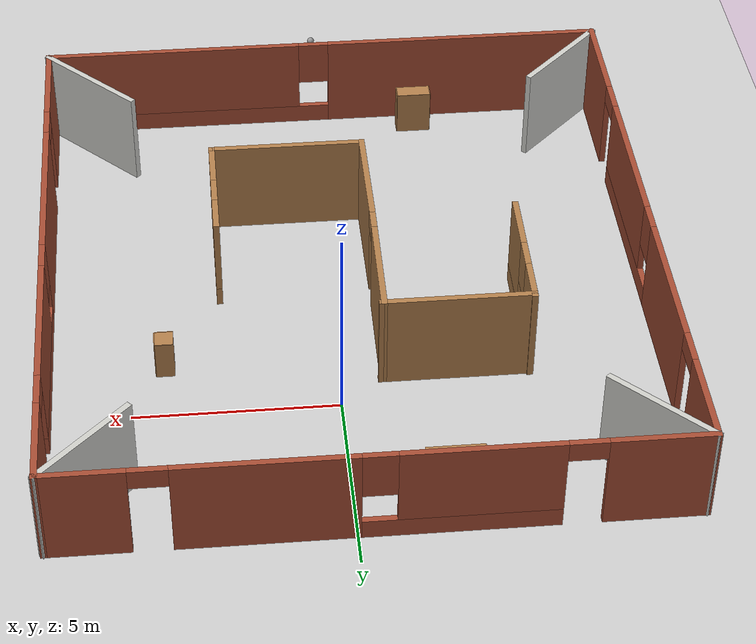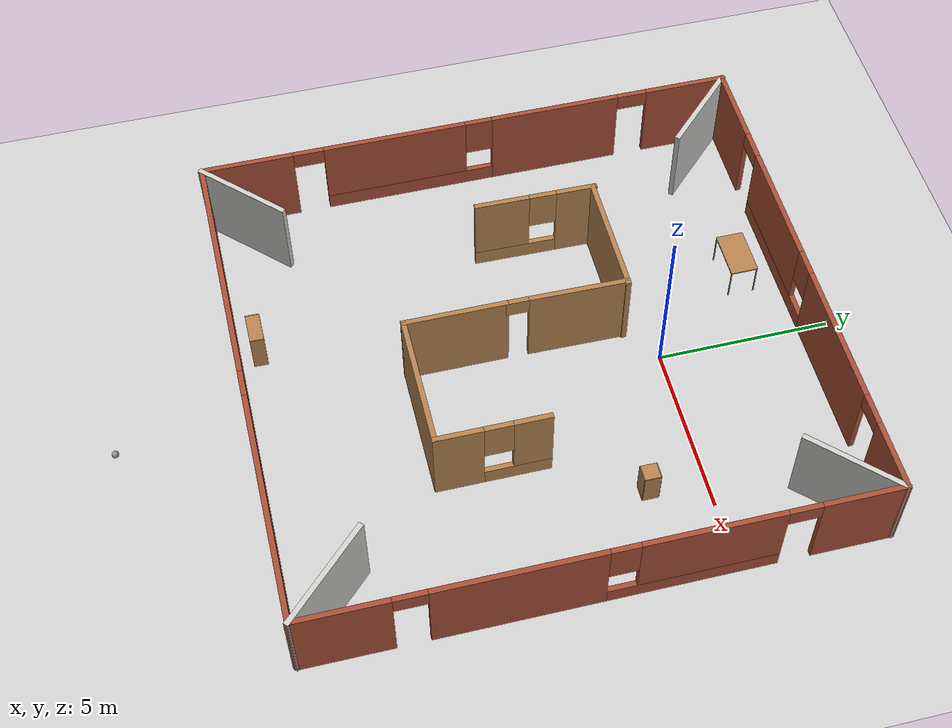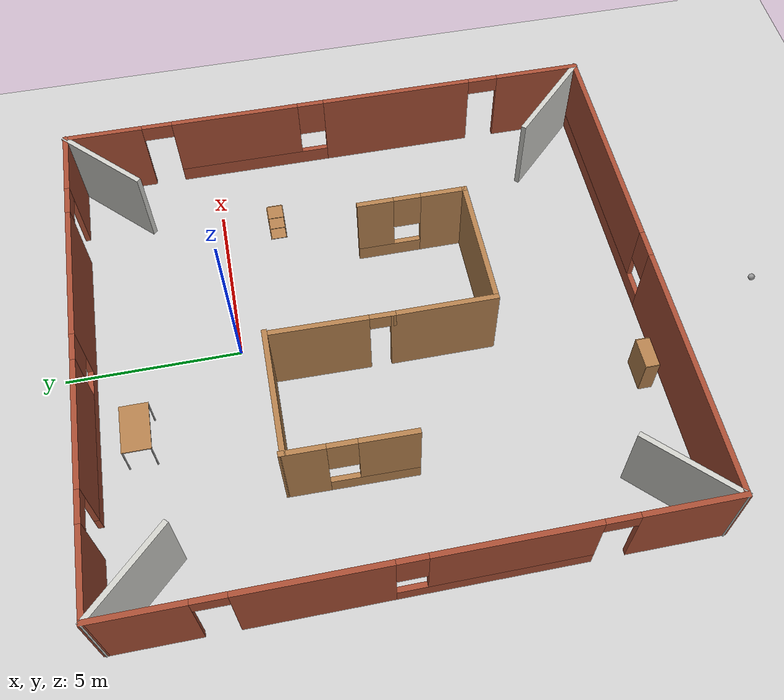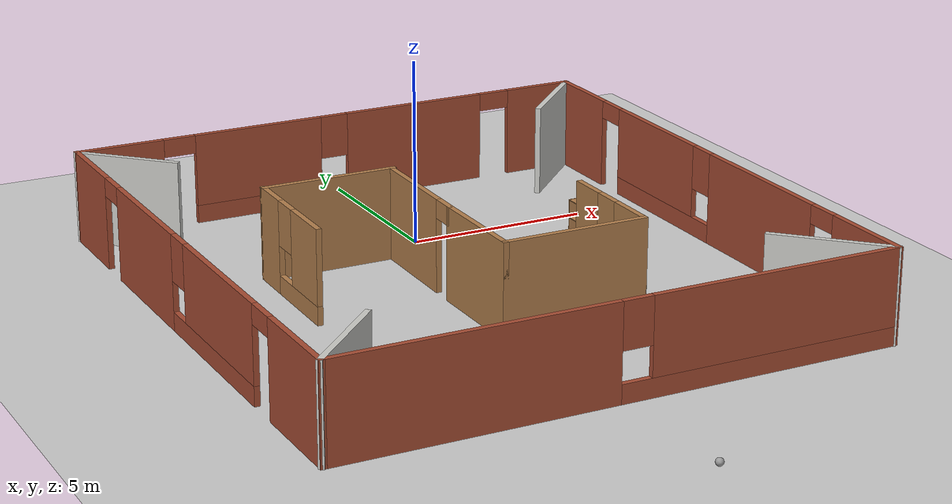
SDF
<sdf version="1.6">
 <world name="default">
  <light name="sun" type="directional">
   <pose>0 0 10 0 -0 0</pose>
   <diffuse>0.8 0.8 0.8 1</diffuse>
   <specular>0.1 0.1 0.1 1</specular>
   <attenuation>
    <range>1000</range>
    <constant>0.9</constant>
    <linear>0.01</linear>
    <quadratic>0.001</quadratic>
   </attenuation>
   <direction>-0.5 0.5 -1</direction>
  </light>
  <model name="ground_plane">
   <static>1</static>
   <link name="link">
    <collision name="collision">
     <geometry><plane><normal>0 0 1</normal><size>100 100</size></plane></geometry>
     <surface><friction><ode><mu>100</mu><mu2>50</mu2></ode></friction></surface>
    </collision>
    <visual name="visual">
     <cast_shadows>0</cast_shadows>
     <geometry><plane><normal>0 0 1</normal><size>100 100</size></plane></geometry>
     <material>
      <script><uri>file://media/materials/scripts/gazebo.material</uri><name>Gazebo/Grey</name></script>
     </material>
    </visual>
   </link>
  </model>
  <gravity>0 0 -9.8</gravity>
  <magnetic_field>6e-06 2.3e-05 -4.2e-05</magnetic_field>
  <atmosphere type="adiabatic"/>
  <physics name="default_physics" default="0" type="ode">
   <max_step_size>0.001</max_step_size>
   <real_time_factor>1</real_time_factor>
   <real_time_update_rate>1000</real_time_update_rate>
  </physics>
  <scene><ambient>0.4 0.4 0.4 1</ambient><background>0.7 0.7 0.7 1</background><shadows>1</shadows></scene>
  <spherical_coordinates>
   <surface_model>EARTH_WGS84</surface_model>
   <latitude_deg>0</latitude_deg>
   <longitude_deg>0</longitude_deg>
   <elevation>0</elevation>
   <heading_deg>0</heading_deg>
  </spherical_coordinates>
  <model name="NewHouse">
   <pose>-0.465 -3.732 0 0 -0 0</pose>
   <link name="Wall_1">
    <pose>7.425 0 0 0 -0 1.5708</pose>
    <visual name="Wall_1_Visual_0">
     <pose>-6.69289 0 1.25 0 -0 0</pose>
     <geometry><box><size>2.61422 0.15 2.5</size></box></geometry>
     <material>
      <script><uri>file://media/materials/scripts/gazebo.material</uri><name>Gazebo/Bricks</name></script>
      <ambient>1 1 1 1</ambient>
     </material>
    </visual>
    <collision name="Wall_1_Collision_0">
     <geometry><box><size>2.61422 0.15 2.5</size></box></geometry>
     <pose>-6.69289 0 1.25 0 -0 0</pose>
    </collision>
    <visual name="Wall_1_Visual_1">
     <pose>-2.18914 0 1.25 0 -0 0</pose>
     <geometry><box><size>4.5933 0.15 2.5</size></box></geometry>
     <material>
      <script><uri>file://media/materials/scripts/gazebo.material</uri><name>Gazebo/Bricks</name></script>
      <ambient>1 1 1 1</ambient>
     </material>
    </visual>
    <collision name="Wall_1_Collision_1">
     <geometry><box><size>4.5933 0.15 2.5</size></box></geometry>
     <pose>-2.18914 0 1.25 0 -0 0</pose>
    </collision>
    <visual name="Wall_1_Visual_2">
     <pose>6.82821 0 1.25 0 -0 0</pose>
     <geometry><box><size>2.34357 0.15 2.5</size></box></geometry>
     <material>
      <script><uri>file://media/materials/scripts/gazebo.material</uri><name>Gazebo/Bricks</name></script>
      <ambient>1 1 1 1</ambient>
     </material>
    </visual>
    <collision name="Wall_1_Collision_2">
     <geometry><box><size>2.34357 0.15 2.5</size></box></geometry>
     <pose>6.82821 0 1.25 0 -0 0</pose>
    </collision>
    <visual name="Wall_1_Visual_3">
     <pose>2.43197 0 0.25 0 -0 0</pose>
     <geometry><box><size>4.64891 0.15 0.5</size></box></geometry>
     <material>
      <script><uri>file://media/materials/scripts/gazebo.material</uri><name>Gazebo/Bricks</name></script>
      <ambient>1 1 1 1</ambient>
     </material>
    </visual>
    <collision name="Wall_1_Collision_3">
     <geometry><box><size>4.64891 0.15 0.5</size></box></geometry>
     <pose>2.43197 0 0.25 0 -0 0</pose>
    </collision>
    <visual name="Wall_1_Visual_4">
     <pose>2.83197 0 1.5 0 -0 0</pose>
     <geometry><box><size>3.84891 0.15 2</size></box></geometry>
     <material>
      <script><uri>file://media/materials/scripts/gazebo.material</uri><name>Gazebo/Bricks</name></script>
      <ambient>1 1 1 1</ambient>
     </material>
    </visual>
    <collision name="Wall_1_Collision_4">
     <geometry><box><size>3.84891 0.15 2</size></box></geometry>
     <pose>2.83197 0 1.5 0 -0 0</pose>
    </collision>
    <visual name="Wall_1_Visual_5">
     <pose>0.507513 0 1.9 0 -0 0</pose>
     <geometry><box><size>0.8 0.15 1.2</size></box></geometry>
     <material>
      <script><uri>file://media/materials/scripts/gazebo.material</uri><name>Gazebo/Bricks</name></script>
      <ambient>1 1 1 1</ambient>
     </material>
    </visual>
    <collision name="Wall_1_Collision_5">
     <geometry><box><size>0.8 0.15 1.2</size></box></geometry>
     <pose>0.507513 0 1.9 0 -0 0</pose>
    </collision>
    <visual name="Wall_1_Visual_6">
     <pose>-4.93579 0 2.25 0 -0 0</pose>
     <geometry><box><size>0.9 0.15 0.5</size></box></geometry>
     <material>
      <script><uri>file://media/materials/scripts/gazebo.material</uri><name>Gazebo/Bricks</name></script>
      <ambient>1 1 1 1</ambient>
     </material>
    </visual>
    <collision name="Wall_1_Collision_6">
     <geometry><box><size>0.9 0.15 0.5</size></box></geometry>
     <pose>-4.93579 0 2.25 0 -0 0</pose>
    </collision>
    <visual name="Wall_1_Visual_7">
     <pose>5.20643 0 2.25 0 -0 0</pose>
     <geometry><box><size>0.9 0.15 0.5</size></box></geometry>
     <material>
      <script><uri>file://media/materials/scripts/gazebo.material</uri><name>Gazebo/Bricks</name></script>
      <ambient>1 1 1 1</ambient>
     </material>
    </visual>
    <collision name="Wall_1_Collision_7">
     <geometry><box><size>0.9 0.15 0.5</size></box></geometry>
     <pose>5.20643 0 2.25 0 -0 0</pose>
    </collision>
   </link>
   <link name="Wall_10">
    <collision name="Wall_10_Collision">
     <geometry><box><size>3 0.15 2.5</size></box></geometry>
     <pose>0 0 1.25 0 -0 0</pose>
    </collision>
    <visual name="Wall_10_Visual">
     <pose>0 0 1.25 0 -0 0</pose>
     <geometry><box><size>3 0.15 2.5</size></box></geometry>
     <material>
      <script><uri>file://media/materials/scripts/gazebo.material</uri><name>Gazebo/CeilingTiled</name></script>
      <ambient>1 1 1 1</ambient>
     </material>
    </visual>
    <pose>-6.41737 -6.91737 0 0 -0 0.785398</pose>
   </link>
   <link name="Wall_12">
    <collision name="Wall_12_Collision">
     <geometry><box><size>3 0.15 2.5</size></box></geometry>
     <pose>0 0 1.25 0 -0 0</pose>
    </collision>
    <visual name="Wall_12_Visual">
     <pose>0 0 1.25 0 -0 0</pose>
     <geometry><box><size>3 0.15 2.5</size></box></geometry>
     <material>
      <script><uri>file://media/materials/scripts/gazebo.material</uri><name>Gazebo/CeilingTiled</name></script>
      <ambient>1 1 1 1</ambient>
     </material>
    </visual>
    <pose>6.41737 6.91737 0 0 0 -2.35619</pose>
   </link>
   <link name="Wall_14">
    <collision name="Wall_14_Collision">
     <geometry><box><size>3.25 0.15 2.5</size></box></geometry>
     <pose>0 0 1.25 0 -0 0</pose>
    </collision>
    <visual name="Wall_14_Visual">
     <pose>0 0 1.25 0 -0 0</pose>
     <geometry><box><size>3.25 0.15 2.5</size></box></geometry>
     <material>
      <script><uri>file://media/materials/scripts/gazebo.material</uri><name>Gazebo/CeilingTiled</name></script>
      <ambient>1 1 1 1</ambient>
     </material>
    </visual>
    <pose>6.32898 -6.82898 0 0 -0 2.35619</pose>
   </link>
   <link name="Wall_16">
    <collision name="Wall_16_Collision">
     <geometry><box><size>3 0.15 2.5</size></box></geometry>
     <pose>0 0 1.25 0 -0 0</pose>
    </collision>
    <visual name="Wall_16_Visual">
     <pose>0 0 1.25 0 -0 0</pose>
     <geometry><box><size>3 0.15 2.5</size></box></geometry>
     <material>
      <script><uri>file://media/materials/scripts/gazebo.material</uri><name>Gazebo/CeilingTiled</name></script>
      <ambient>1 1 1 1</ambient>
     </material>
    </visual>
    <pose>-6.41737 6.91737 0 0 0 -0.785398</pose>
   </link>
   <link name="Wall_2">
    <pose>0 7.925 0 0 -0 3.14159</pose>
    <visual name="Wall_2_Visual_0">
     <pose>-6.478 0 1.25 0 -0 0</pose>
     <geometry><box><size>2.04399 0.15 2.5</size></box></geometry>
     <material>
      <script><uri>file://media/materials/scripts/gazebo.material</uri><name>Gazebo/Bricks</name></script>
      <ambient>1 1 1 1</ambient>
     </material>
    </visual>
    <collision name="Wall_2_Collision_0">
     <geometry><box><size>2.04399 0.15 2.5</size></box></geometry>
     <pose>-6.478 0 1.25 0 -0 0</pose>
    </collision>
    <visual name="Wall_2_Visual_1">
     <pose>-2.46871 0 1.25 0 -0 0</pose>
     <geometry><box><size>4.17458 0.15 2.5</size></box></geometry>
     <material>
      <script><uri>file://media/materials/scripts/gazebo.material</uri><name>Gazebo/Bricks</name></script>
      <ambient>1 1 1 1</ambient>
     </material>
    </visual>
    <collision name="Wall_2_Collision_1">
     <geometry><box><size>4.17458 0.15 2.5</size></box></geometry>
     <pose>-2.46871 0 1.25 0 -0 0</pose>
    </collision>
    <visual name="Wall_2_Visual_2">
     <pose>6.26396 0 1.25 0 -0 0</pose>
     <geometry><box><size>2.47208 0.15 2.5</size></box></geometry>
     <material>
      <script><uri>file://media/materials/scripts/gazebo.material</uri><name>Gazebo/Bricks</name></script>
      <ambient>1 1 1 1</ambient>
     </material>
    </visual>
    <collision name="Wall_2_Collision_2">
     <geometry><box><size>2.47208 0.15 2.5</size></box></geometry>
     <pose>6.26396 0 1.25 0 -0 0</pose>
    </collision>
    <visual name="Wall_2_Visual_3">
     <pose>1.87325 0 0.25 0 -0 0</pose>
     <geometry><box><size>4.50934 0.15 0.5</size></box></geometry>
     <material>
      <script><uri>file://media/materials/scripts/gazebo.material</uri><name>Gazebo/Bricks</name></script>
      <ambient>1 1 1 1</ambient>
     </material>
    </visual>
    <collision name="Wall_2_Collision_3">
     <geometry><box><size>4.50934 0.15 0.5</size></box></geometry>
     <pose>1.87325 0 0.25 0 -0 0</pose>
    </collision>
    <visual name="Wall_2_Visual_4">
     <pose>2.27325 0 1.5 0 -0 0</pose>
     <geometry><box><size>3.70934 0.15 2</size></box></geometry>
     <material>
      <script><uri>file://media/materials/scripts/gazebo.material</uri><name>Gazebo/Bricks</name></script>
      <ambient>1 1 1 1</ambient>
     </material>
    </visual>
    <collision name="Wall_2_Collision_4">
     <geometry><box><size>3.70934 0.15 2</size></box></geometry>
     <pose>2.27325 0 1.5 0 -0 0</pose>
    </collision>
    <visual name="Wall_2_Visual_5">
     <pose>0.018576 0 1.9 0 -0 0</pose>
     <geometry><box><size>0.8 0.15 1.2</size></box></geometry>
     <material>
      <script><uri>file://media/materials/scripts/gazebo.material</uri><name>Gazebo/Bricks</name></script>
      <ambient>1 1 1 1</ambient>
     </material>
    </visual>
    <collision name="Wall_2_Collision_5">
     <geometry><box><size>0.8 0.15 1.2</size></box></geometry>
     <pose>0.018576 0 1.9 0 -0 0</pose>
    </collision>
    <visual name="Wall_2_Visual_6">
     <pose>-5.00601 0 2.25 0 -0 0</pose>
     <geometry><box><size>0.9 0.15 0.5</size></box></geometry>
     <material>
      <script><uri>file://media/materials/scripts/gazebo.material</uri><name>Gazebo/Bricks</name></script>
      <ambient>1 1 1 1</ambient>
     </material>
    </visual>
    <collision name="Wall_2_Collision_6">
     <geometry><box><size>0.9 0.15 0.5</size></box></geometry>
     <pose>-5.00601 0 2.25 0 -0 0</pose>
    </collision>
    <visual name="Wall_2_Visual_7">
     <pose>4.57792 0 2.25 0 -0 0</pose>
     <geometry><box><size>0.9 0.15 0.5</size></box></geometry>
     <material>
      <script><uri>file://media/materials/scripts/gazebo.material</uri><name>Gazebo/Bricks</name></script>
      <ambient>1 1 1 1</ambient>
     </material>
    </visual>
    <collision name="Wall_2_Collision_7">
     <geometry><box><size>0.9 0.15 0.5</size></box></geometry>
     <pose>4.57792 0 2.25 0 -0 0</pose>
    </collision>
   </link>
   <link name="Wall_21">
    <collision name="Wall_21_Collision">
     <geometry><box><size>3.75456 0.15 2.5</size></box></geometry>
     <pose>0 0 1.25 0 -0 0</pose>
    </collision>
    <visual name="Wall_21_Visual">
     <pose>0 0 1.25 0 -0 0</pose>
     <geometry><box><size>3.75456 0.15 2.5</size></box></geometry>
     <material>
      <script><uri>file://media/materials/scripts/gazebo.material</uri><name>Gazebo/Wood</name></script>
      <ambient>1 1 1 1</ambient>
     </material>
    </visual>
    <pose>-2.35692 2.92676 0 0 -0 0</pose>
   </link>
   <link name="Wall_22">
    <pose>-0.62443 1.19654 0 0 0 -1.58424</pose>
    <visual name="Wall_22_Visual_0">
     <pose>-0.363906 0 1.25 0 -0 0</pose>
     <geometry><box><size>2.88293 0.15 2.5</size></box></geometry>
     <material>
      <script><uri>file://media/materials/scripts/gazebo.material</uri><name>Gazebo/Wood</name></script>
      <ambient>1 1 1 1</ambient>
     </material>
    </visual>
    <collision name="Wall_22_Collision_0">
     <geometry><box><size>2.88293 0.15 2.5</size></box></geometry>
     <pose>-0.363906 0 1.25 0 -0 0</pose>
    </collision>
    <visual name="Wall_22_Visual_1">
     <pose>1.44146 0 2.25 0 -0 0</pose>
     <geometry><box><size>0.727811 0.15 0.5</size></box></geometry>
     <material>
      <script><uri>file://media/materials/scripts/gazebo.material</uri><name>Gazebo/Wood</name></script>
      <ambient>1 1 1 1</ambient>
     </material>
    </visual>
    <collision name="Wall_22_Collision_1">
     <geometry><box><size>0.727811 0.15 0.5</size></box></geometry>
     <pose>1.44146 0 2.25 0 -0 0</pose>
    </collision>
   </link>
   <link name="Wall_24">
    <pose>-4.18247 1.24307 0 0 0 -1.58424</pose>
    <visual name="Wall_24_Visual_0">
     <pose>-1.20155 0 1.25 0 -0 0</pose>
     <geometry><box><size>1.20765 0.15 2.5</size></box></geometry>
     <material>
      <script><uri>file://media/materials/scripts/gazebo.material</uri><name>Gazebo/Wood</name></script>
      <ambient>1 1 1 1</ambient>
     </material>
    </visual>
    <collision name="Wall_24_Collision_0">
     <geometry><box><size>1.20765 0.15 2.5</size></box></geometry>
     <pose>-1.20155 0 1.25 0 -0 0</pose>
    </collision>
    <visual name="Wall_24_Visual_1">
     <pose>0.603824 0 0.25 0 -0 0</pose>
     <geometry><box><size>2.40309 0.15 0.5</size></box></geometry>
     <material>
      <script><uri>file://media/materials/scripts/gazebo.material</uri><name>Gazebo/Wood</name></script>
      <ambient>1 1 1 1</ambient>
     </material>
    </visual>
    <collision name="Wall_24_Collision_1">
     <geometry><box><size>2.40309 0.15 0.5</size></box></geometry>
     <pose>0.603824 0 0.25 0 -0 0</pose>
    </collision>
    <visual name="Wall_24_Visual_2">
     <pose>1.00382 0 1.5 0 -0 0</pose>
     <geometry><box><size>1.60309 0.15 2</size></box></geometry>
     <material>
      <script><uri>file://media/materials/scripts/gazebo.material</uri><name>Gazebo/Wood</name></script>
      <ambient>1 1 1 1</ambient>
     </material>
    </visual>
    <collision name="Wall_24_Collision_2">
     <geometry><box><size>1.60309 0.15 2</size></box></geometry>
     <pose>1.00382 0 1.5 0 -0 0</pose>
    </collision>
    <visual name="Wall_24_Visual_3">
     <pose>-0.197722 0 1.9 0 -0 0</pose>
     <geometry><box><size>0.8 0.15 1.2</size></box></geometry>
     <material>
      <script><uri>file://media/materials/scripts/gazebo.material</uri><name>Gazebo/Wood</name></script>
      <ambient>1 1 1 1</ambient>
     </material>
    </visual>
    <collision name="Wall_24_Collision_3">
     <geometry><box><size>0.8 0.15 1.2</size></box></geometry>
     <pose>-0.197722 0 1.9 0 -0 0</pose>
    </collision>
   </link>
   <link name="Wall_26">
    <collision name="Wall_26_Collision">
     <geometry><box><size>3 0.15 2.5</size></box></geometry>
     <pose>0 0 1.25 0 -0 0</pose>
    </collision>
    <visual name="Wall_26_Visual">
     <pose>0 0 1.25 0 -0 0</pose>
     <geometry><box><size>3 0.15 2.5</size></box></geometry>
     <material>
      <script><uri>file://media/materials/scripts/gazebo.material</uri><name>Gazebo/Wood</name></script>
      <ambient>1 1 1 1</ambient>
     </material>
    </visual>
    <pose>-0.647692 -1.95867 0 0 0 -1.5708</pose>
   </link>
   <link name="Wall_27">
    <collision name="Wall_27_Collision">
     <geometry><box><size>4 0.15 2.5</size></box></geometry>
     <pose>0 0 1.25 0 -0 0</pose>
    </collision>
    <visual name="Wall_27_Visual">
     <pose>0 0 1.25 0 -0 0</pose>
     <geometry><box><size>4 0.15 2.5</size></box></geometry>
     <material>
      <script><uri>file://media/materials/scripts/gazebo.material</uri><name>Gazebo/Wood</name></script>
      <ambient>1 1 1 1</ambient>
     </material>
    </visual>
    <pose>1.27731 -3.38367 0 0 -0 0</pose>
   </link>
   <link name="Wall_28">
    <pose>3.20231 -1.83367 0 0 -0 1.5708</pose>
    <visual name="Wall_28_Visual_0">
     <pose>-0.935219 0 1.25 0 -0 0</pose>
     <geometry><box><size>1.37956 0.15 2.5</size></box></geometry>
     <material>
      <script><uri>file://media/materials/scripts/gazebo.material</uri><name>Gazebo/Wood</name></script>
      <ambient>1 1 1 1</ambient>
     </material>
    </visual>
    <collision name="Wall_28_Collision_0">
     <geometry><box><size>1.37956 0.15 2.5</size></box></geometry>
     <pose>-0.935219 0 1.25 0 -0 0</pose>
    </collision>
    <visual name="Wall_28_Visual_1">
     <pose>0.689781 0 0.25 0 -0 0</pose>
     <geometry><box><size>1.87044 0.15 0.5</size></box></geometry>
     <material>
      <script><uri>file://media/materials/scripts/gazebo.material</uri><name>Gazebo/Wood</name></script>
      <ambient>1 1 1 1</ambient>
     </material>
    </visual>
    <collision name="Wall_28_Collision_1">
     <geometry><box><size>1.87044 0.15 0.5</size></box></geometry>
     <pose>0.689781 0 0.25 0 -0 0</pose>
    </collision>
    <visual name="Wall_28_Visual_2">
     <pose>1.08978 0 1.5 0 -0 0</pose>
     <geometry><box><size>1.07044 0.15 2</size></box></geometry>
     <material>
      <script><uri>file://media/materials/scripts/gazebo.material</uri><name>Gazebo/Wood</name></script>
      <ambient>1 1 1 1</ambient>
     </material>
    </visual>
    <collision name="Wall_28_Collision_2">
     <geometry><box><size>1.07044 0.15 2</size></box></geometry>
     <pose>1.08978 0 1.5 0 -0 0</pose>
    </collision>
    <visual name="Wall_28_Visual_3">
     <pose>0.154561 0 1.9 0 -0 0</pose>
     <geometry><box><size>0.8 0.15 1.2</size></box></geometry>
     <material>
      <script><uri>file://media/materials/scripts/gazebo.material</uri><name>Gazebo/Wood</name></script>
      <ambient>1 1 1 1</ambient>
     </material>
    </visual>
    <collision name="Wall_28_Collision_3">
     <geometry><box><size>0.8 0.15 1.2</size></box></geometry>
     <pose>0.154561 0 1.9 0 -0 0</pose>
    </collision>
   </link>
   <link name="Wall_3">
    <pose>-7.425 0 0 0 0 -1.5708</pose>
    <visual name="Wall_3_Visual_0">
     <pose>-6.75843 0 1.25 0 -0 0</pose>
     <geometry><box><size>2.48314 0.15 2.5</size></box></geometry>
     <material>
      <script><uri>file://media/materials/scripts/gazebo.material</uri><name>Gazebo/Bricks</name></script>
      <ambient>1 1 1 1</ambient>
     </material>
    </visual>
    <collision name="Wall_3_Collision_0">
     <geometry><box><size>2.48314 0.15 2.5</size></box></geometry>
     <pose>-6.75843 0 1.25 0 -0 0</pose>
    </collision>
    <visual name="Wall_3_Visual_1">
     <pose>-2.66914 0 1.25 0 -0 0</pose>
     <geometry><box><size>3.89544 0.15 2.5</size></box></geometry>
     <material>
      <script><uri>file://media/materials/scripts/gazebo.material</uri><name>Gazebo/Bricks</name></script>
      <ambient>1 1 1 1</ambient>
     </material>
    </visual>
    <collision name="Wall_3_Collision_1">
     <geometry><box><size>3.89544 0.15 2.5</size></box></geometry>
     <pose>-2.66914 0 1.25 0 -0 0</pose>
    </collision>
    <visual name="Wall_3_Visual_2">
     <pose>6.62311 0 1.25 0 -0 0</pose>
     <geometry><box><size>2.75379 0.15 2.5</size></box></geometry>
     <material>
      <script><uri>file://media/materials/scripts/gazebo.material</uri><name>Gazebo/Bricks</name></script>
      <ambient>1 1 1 1</ambient>
     </material>
    </visual>
    <collision name="Wall_3_Collision_2">
     <geometry><box><size>2.75379 0.15 2.5</size></box></geometry>
     <pose>6.62311 0 1.25 0 -0 0</pose>
    </collision>
    <visual name="Wall_3_Visual_3">
     <pose>1.8124 0 0.25 0 -0 0</pose>
     <geometry><box><size>5.06763 0.15 0.5</size></box></geometry>
     <material>
      <script><uri>file://media/materials/scripts/gazebo.material</uri><name>Gazebo/Bricks</name></script>
      <ambient>1 1 1 1</ambient>
     </material>
    </visual>
    <collision name="Wall_3_Collision_3">
     <geometry><box><size>5.06763 0.15 0.5</size></box></geometry>
     <pose>1.8124 0 0.25 0 -0 0</pose>
    </collision>
    <visual name="Wall_3_Visual_4">
     <pose>2.2124 0 1.5 0 -0 0</pose>
     <geometry><box><size>4.26763 0.15 2</size></box></geometry>
     <material>
      <script><uri>file://media/materials/scripts/gazebo.material</uri><name>Gazebo/Bricks</name></script>
      <ambient>1 1 1 1</ambient>
     </material>
    </visual>
    <collision name="Wall_3_Collision_4">
     <geometry><box><size>4.26763 0.15 2</size></box></geometry>
     <pose>2.2124 0 1.5 0 -0 0</pose>
    </collision>
    <visual name="Wall_3_Visual_5">
     <pose>-0.321417 0 1.9 0 -0 0</pose>
     <geometry><box><size>0.8 0.15 1.2</size></box></geometry>
     <material>
      <script><uri>file://media/materials/scripts/gazebo.material</uri><name>Gazebo/Bricks</name></script>
      <ambient>1 1 1 1</ambient>
     </material>
    </visual>
    <collision name="Wall_3_Collision_5">
     <geometry><box><size>0.8 0.15 1.2</size></box></geometry>
     <pose>-0.321417 0 1.9 0 -0 0</pose>
    </collision>
    <visual name="Wall_3_Visual_6">
     <pose>-5.06686 0 2.25 0 -0 0</pose>
     <geometry><box><size>0.9 0.15 0.5</size></box></geometry>
     <material>
      <script><uri>file://media/materials/scripts/gazebo.material</uri><name>Gazebo/Bricks</name></script>
      <ambient>1 1 1 1</ambient>
     </material>
    </visual>
    <collision name="Wall_3_Collision_6">
     <geometry><box><size>0.9 0.15 0.5</size></box></geometry>
     <pose>-5.06686 0 2.25 0 -0 0</pose>
    </collision>
    <visual name="Wall_3_Visual_7">
     <pose>4.79621 0 2.25 0 -0 0</pose>
     <geometry><box><size>0.9 0.15 0.5</size></box></geometry>
     <material>
      <script><uri>file://media/materials/scripts/gazebo.material</uri><name>Gazebo/Bricks</name></script>
      <ambient>1 1 1 1</ambient>
     </material>
    </visual>
    <collision name="Wall_3_Collision_7">
     <geometry><box><size>0.9 0.15 0.5</size></box></geometry>
     <pose>4.79621 0 2.25 0 -0 0</pose>
    </collision>
   </link>
   <link name="Wall_8">
    <pose>0 -7.925 0 0 -0 0</pose>
    <visual name="Wall_8_Visual_0">
     <pose>-3.81972 0 1.25 0 -0 0</pose>
     <geometry><box><size>7.36057 0.15 2.5</size></box></geometry>
     <material>
      <script><uri>file://media/materials/scripts/gazebo.material</uri><name>Gazebo/Bricks</name></script>
      <ambient>1 1 1 1</ambient>
     </material>
    </visual>
    <collision name="Wall_8_Collision_0">
     <geometry><box><size>7.36057 0.15 2.5</size></box></geometry>
     <pose>-3.81972 0 1.25 0 -0 0</pose>
    </collision>
    <visual name="Wall_8_Visual_1">
     <pose>3.68028 0 0.25 0 -0 0</pose>
     <geometry><box><size>7.63943 0.15 0.5</size></box></geometry>
     <material>
      <script><uri>file://media/materials/scripts/gazebo.material</uri><name>Gazebo/Bricks</name></script>
      <ambient>1 1 1 1</ambient>
     </material>
    </visual>
    <collision name="Wall_8_Collision_1">
     <geometry><box><size>7.63943 0.15 0.5</size></box></geometry>
     <pose>3.68028 0 0.25 0 -0 0</pose>
    </collision>
    <visual name="Wall_8_Visual_2">
     <pose>4.08028 0 1.5 0 -0 0</pose>
     <geometry><box><size>6.83943 0.15 2</size></box></geometry>
     <material>
      <script><uri>file://media/materials/scripts/gazebo.material</uri><name>Gazebo/Bricks</name></script>
      <ambient>1 1 1 1</ambient>
     </material>
    </visual>
    <collision name="Wall_8_Collision_2">
     <geometry><box><size>6.83943 0.15 2</size></box></geometry>
     <pose>4.08028 0 1.5 0 -0 0</pose>
    </collision>
    <visual name="Wall_8_Visual_3">
     <pose>0.260567 0 1.9 0 -0 0</pose>
     <geometry><box><size>0.8 0.15 1.2</size></box></geometry>
     <material>
      <script><uri>file://media/materials/scripts/gazebo.material</uri><name>Gazebo/Bricks</name></script>
      <ambient>1 1 1 1</ambient>
     </material>
    </visual>
    <collision name="Wall_8_Collision_3">
     <geometry><box><size>0.8 0.15 1.2</size></box></geometry>
     <pose>0.260567 0 1.9 0 -0 0</pose>
    </collision>
   </link>
   <static>1</static>
  </model>
  <model name="ball">
   <link name="link_0">
    <inertial>
     <mass>0.0100475</mass>
     <inertia>
      <ixx>4.678e-05</ixx>
      <ixy>0</ixy>
      <ixz>0</ixz>
      <iyy>4.678e-05</iyy>
      <iyz>0</iyz>
      <izz>4.678e-05</izz>
     </inertia>
    </inertial>
    <visual name="visual">
     <geometry><sphere><radius>0.1</radius></sphere></geometry>
     <material>
      <lighting>1</lighting>
      <script><uri>file://media/materials/scripts/gazebo.material</uri><name>Gazebo/Grey</name></script>
      <ambient>0.3 0.3 0.3 1</ambient>
      <diffuse>0.7 0.7 0.7 1</diffuse>
      <specular>0.01 0.01 0.01 1</specular>
      <emissive>1 1 1 1</emissive>
      <shader type="vertex"><normal_map>__default__</normal_map></shader>
     </material>
    </visual>
    <collision name="collision">
     <geometry><sphere><radius>0.1</radius></sphere></geometry>
     <surface>
      <friction>
       <ode><mu>1</mu><mu2>1</mu2><fdir1>0 0 0</fdir1><slip1>0</slip1><slip2>0</slip2></ode>
       <torsional>
        <coefficient>1</coefficient>
        <patch_radius>0</patch_radius>
        <surface_radius>0</surface_radius>
        <use_patch_radius>1</use_patch_radius>
        <ode><slip>0</slip></ode>
       </torsional>
      </friction>
      <bounce><restitution_coefficient>0</restitution_coefficient><threshold>1e+06</threshold></bounce>
      <contact>
       <collide_without_contact>0</collide_without_contact>
       <collide_without_contact_bitmask>1</collide_without_contact_bitmask>
       <collide_bitmask>1</collide_bitmask>
       <ode>
        <soft_cfm>0</soft_cfm>
        <soft_erp>0.2</soft_erp>
        <kp>1e+13</kp>
        <kd>1</kd>
        <max_vel>0.01</max_vel>
        <min_depth>0</min_depth>
       </ode>
       <bullet>
        <split_impulse>1</split_impulse>
        <split_impulse_penetration_threshold>-0.01</split_impulse_penetration_threshold>
        <soft_cfm>0</soft_cfm>
        <soft_erp>0.2</soft_erp>
        <kp>1e+13</kp>
        <kd>1</kd>
       </bullet>
      </contact>
     </surface>
    </collision>
   </link>
   <static>0</static>
   <pose>-0.387269 -15.3945 0.1 0 -0 0</pose>
  </model>
  <model name="bookshelf">
   <static>1</static>
   <link name="link">
    <inertial><mass>1</mass></inertial>
    <collision name="back">
     <pose>0 0.005 0.6 0 -0 0</pose>
     <geometry><box><size>0.9 0.01 1.2</size></box></geometry>
    </collision>
    <visual name="visual1">
     <pose>0 0.005 0.6 0 -0 0</pose>
     <geometry><box><size>0.9 0.01 1.2</size></box></geometry>
     <material>
      <script><uri>file://media/materials/scripts/gazebo.material</uri><name>Gazebo/Wood</name></script>
     </material>
    </visual>
    <collision name="left_side">
     <pose>0.45 -0.195 0.6 0 -0 0</pose>
     <geometry><box><size>0.02 0.4 1.2</size></box></geometry>
    </collision>
    <visual name="visual2">
     <pose>0.45 -0.195 0.6 0 -0 0</pose>
     <geometry><box><size>0.02 0.4 1.2</size></box></geometry>
     <material>
      <script><uri>file://media/materials/scripts/gazebo.material</uri><name>Gazebo/Wood</name></script>
     </material>
    </visual>
    <collision name="right_side">
     <pose>-0.45 -0.195 0.6 0 -0 0</pose>
     <geometry><box><size>0.02 0.4 1.2</size></box></geometry>
    </collision>
    <visual name="visual3">
     <pose>-0.45 -0.195 0.6 0 -0 0</pose>
     <geometry><box><size>0.02 0.4 1.2</size></box></geometry>
     <material>
      <script><uri>file://media/materials/scripts/gazebo.material</uri><name>Gazebo/Wood</name></script>
     </material>
    </visual>
    <collision name="bottom">
     <pose>0 -0.195 0.03 0 -0 0</pose>
     <geometry><box><size>0.88 0.4 0.06</size></box></geometry>
    </collision>
    <visual name="visual4">
     <pose>0 -0.195 0.03 0 -0 0</pose>
     <geometry><box><size>0.88 0.4 0.06</size></box></geometry>
     <material>
      <script><uri>file://media/materials/scripts/gazebo.material</uri><name>Gazebo/Wood</name></script>
     </material>
    </visual>
    <collision name="top">
     <pose>0 -0.195 1.19 0 -0 0</pose>
     <geometry><box><size>0.88 0.4 0.02</size></box></geometry>
    </collision>
    <visual name="visual5">
     <pose>0 -0.195 1.19 0 -0 0</pose>
     <geometry><box><size>0.88 0.4 0.02</size></box></geometry>
     <material>
      <script><uri>file://media/materials/scripts/gazebo.material</uri><name>Gazebo/Wood</name></script>
     </material>
    </visual>
    <collision name="low_shelf">
     <pose>0 -0.195 0.43 0 -0 0</pose>
     <geometry><box><size>0.88 0.4 0.02</size></box></geometry>
    </collision>
    <visual name="visual6">
     <pose>0 -0.195 0.43 0 -0 0</pose>
     <geometry><box><size>0.88 0.4 0.02</size></box></geometry>
     <material>
      <script><uri>file://media/materials/scripts/gazebo.material</uri><name>Gazebo/Wood</name></script>
     </material>
    </visual>
    <collision name="high_shelf">
     <pose>0 -0.195 0.8 0 -0 0</pose>
     <geometry><box><size>0.88 0.4 0.02</size></box></geometry>
    </collision>
    <visual name="visual7">
     <pose>0 -0.195 0.8 0 -0 0</pose>
     <geometry><box><size>0.88 0.4 0.02</size></box></geometry>
     <material>
      <script><uri>file://media/materials/scripts/gazebo.material</uri><name>Gazebo/Wood</name></script>
     </material>
    </visual>
   </link>
   <pose>-2.90814 -10.8589 0 0 -0 0</pose>
  </model>
  <model name="table">
   <static>0</static>
   <link name="link">
    <collision name="surface">
     <pose>0 0 1 0 -0 0</pose>
     <geometry><box><size>1.5 0.8 0.03</size></box></geometry>
     <surface><friction><ode><mu>0.6</mu><mu2>0.6</mu2></ode></friction></surface>
    </collision>
    <visual name="visual1">
     <pose>0 0 1 0 -0 0</pose>
     <geometry><box><size>1.4 0.8 0.04</size></box></geometry>
     <material>
      <script><uri>file://media/materials/scripts/gazebo.material</uri><name>Gazebo/Wood</name></script>
     </material>
    </visual>
    <collision name="front_left_leg">
     <pose>0.68 0.38 0.5 0 -0 0</pose>
     <geometry><cylinder><radius>0.02</radius><length>1</length></cylinder></geometry>
    </collision>
    <visual name="front_left_leg">
     <pose>0.68 0.38 0.5 0 -0 0</pose>
     <geometry><cylinder><radius>0.02</radius><length>1</length></cylinder></geometry>
     <material>
      <script><uri>file://media/materials/scripts/gazebo.material</uri><name>Gazebo/Grey</name></script>
     </material>
    </visual>
    <collision name="front_right_leg">
     <pose>0.68 -0.38 0.5 0 -0 0</pose>
     <geometry><cylinder><radius>0.02</radius><length>1</length></cylinder></geometry>
    </collision>
    <visual name="front_right_leg">
     <pose>0.68 -0.38 0.5 0 -0 0</pose>
     <geometry><cylinder><radius>0.02</radius><length>1</length></cylinder></geometry>
     <material>
      <script><uri>file://media/materials/scripts/gazebo.material</uri><name>Gazebo/Grey</name></script>
     </material>
    </visual>
    <collision name="back_right_leg">
     <pose>-0.68 -0.38 0.5 0 -0 0</pose>
     <geometry><cylinder><radius>0.02</radius><length>1</length></cylinder></geometry>
    </collision>
    <visual name="back_right_leg">
     <pose>-0.68 -0.38 0.5 0 -0 0</pose>
     <geometry><cylinder><radius>0.02</radius><length>1</length></cylinder></geometry>
     <material>
      <script><uri>file://media/materials/scripts/gazebo.material</uri><name>Gazebo/Grey</name></script>
     </material>
    </visual>
    <collision name="back_left_leg">
     <pose>-0.68 0.38 0.5 0 -0 0</pose>
     <geometry><cylinder><radius>0.02</radius><length>1</length></cylinder></geometry>
    </collision>
    <visual name="back_left_leg">
     <pose>-0.68 0.38 0.5 0 -0 0</pose>
     <geometry><cylinder><radius>0.02</radius><length>1</length></cylinder></geometry>
     <material>
      <script><uri>file://media/materials/scripts/gazebo.material</uri><name>Gazebo/Grey</name></script>
     </material>
    </visual>
    <inertial>
     <inertia><ixx>1</ixx><ixy>0</ixy><ixz>0</ixz><iyy>1</iyy><iyz>0</iyz><izz>1</izz></inertia>
     <mass>1</mass>
    </inertial>
   </link>
   <pose>-2.36867 2.98061 -8e-06 0 -0 0</pose>
  </model>
  <model name="cabinet">
   <static>1</static>
   <link name="cabinet_bottom_plate">
    <inertial>
     <pose>0 0 -1 0 -0 0</pose>
     <inertia><ixx>2.05</ixx><ixy>0</ixy><ixz>0</ixz><iyy>2.05</iyy><iyz>0</iyz><izz>2.05</izz></inertia>
     <mass>25</mass>
    </inertial>
    <collision name="cabinet_bottom_plate_geom">
     <pose>0 0 0.01 0 -0 0</pose>
     <geometry><box><size>0.45 0.45 0.02</size></box></geometry>
    </collision>
    <visual name="cabinet_bottom_plate_geom_visual">
     <pose>0 0 0.01 0 -0 0</pose>
     <geometry><box><size>0.45 0.45 0.02</size></box></geometry>
     <material>
      <script><uri>file://media/materials/scripts/gazebo.material</uri><name>Gazebo/Wood</name></script>
     </material>
    </visual>
    <collision name="cabinet_bottom_plate_geom_cabinet_back_plate">
     <pose>0.235 0 0.51 0 -0 0</pose>
     <geometry><box><size>0.02 0.45 1.02</size></box></geometry>
    </collision>
    <visual name="cabinet_bottom_plate_geom_cabinet_back_plate_visual">
     <pose>0.235 0 0.51 0 -0 0</pose>
     <geometry><box><size>0.02 0.45 1.02</size></box></geometry>
     <material>
      <script><uri>file://media/materials/scripts/gazebo.material</uri><name>Gazebo/Wood</name></script>
     </material>
    </visual>
    <collision name="cabinet_bottom_plate_geom_cabinet_left_plate">
     <pose>0 0.235 0.51 0 -0 0</pose>
     <geometry><box><size>0.45 0.02 1.02</size></box></geometry>
    </collision>
    <visual name="cabinet_bottom_plate_geom_cabinet_left_plate_visual">
     <pose>0 0.235 0.51 0 -0 0</pose>
     <geometry><box><size>0.45 0.02 1.02</size></box></geometry>
     <material>
      <script><uri>file://media/materials/scripts/gazebo.material</uri><name>Gazebo/Wood</name></script>
     </material>
    </visual>
    <collision name="cabinet_bottom_plate_geom_cabinet_middle_plate">
     <pose>0 0 0.51 0 -0 0</pose>
     <geometry><box><size>0.45 0.45 0.02</size></box></geometry>
    </collision>
    <visual name="cabinet_bottom_plate_geom_cabinet_middle_plate_visual">
     <pose>0 0 0.51 0 -0 0</pose>
     <geometry><box><size>0.45 0.45 0.02</size></box></geometry>
     <material>
      <script><uri>file://media/materials/scripts/gazebo.material</uri><name>Gazebo/Wood</name></script>
     </material>
    </visual>
    <collision name="cabinet_bottom_plate_geom_cabinet_right_plate">
     <pose>0 -0.235 0.51 0 -0 0</pose>
     <geometry><box><size>0.45 0.02 1.02</size></box></geometry>
    </collision>
    <visual name="cabinet_bottom_plate_geom_cabinet_right_plate_visual">
     <pose>0 -0.235 0.51 0 -0 0</pose>
     <geometry><box><size>0.45 0.02 1.02</size></box></geometry>
     <material>
      <script><uri>file://media/materials/scripts/gazebo.material</uri><name>Gazebo/Wood</name></script>
     </material>
    </visual>
    <collision name="cabinet_bottom_plate_geom_cabinet_top_plate">
     <pose>0 0 1.01 0 -0 0</pose>
     <geometry><box><size>0.45 0.45 0.02</size></box></geometry>
    </collision>
    <visual name="cabinet_bottom_plate_geom_cabinet_top_plate_visual">
     <pose>0 0 1.01 0 -0 0</pose>
     <geometry><box><size>0.45 0.45 0.02</size></box></geometry>
     <material>
      <script><uri>file://media/materials/scripts/gazebo.material</uri><name>Gazebo/Wood</name></script>
     </material>
    </visual>
   </link>
   <pose>4.15063 -1.62191 0 0 -0 0</pose>
  </model>
 </world>
</sdf>
